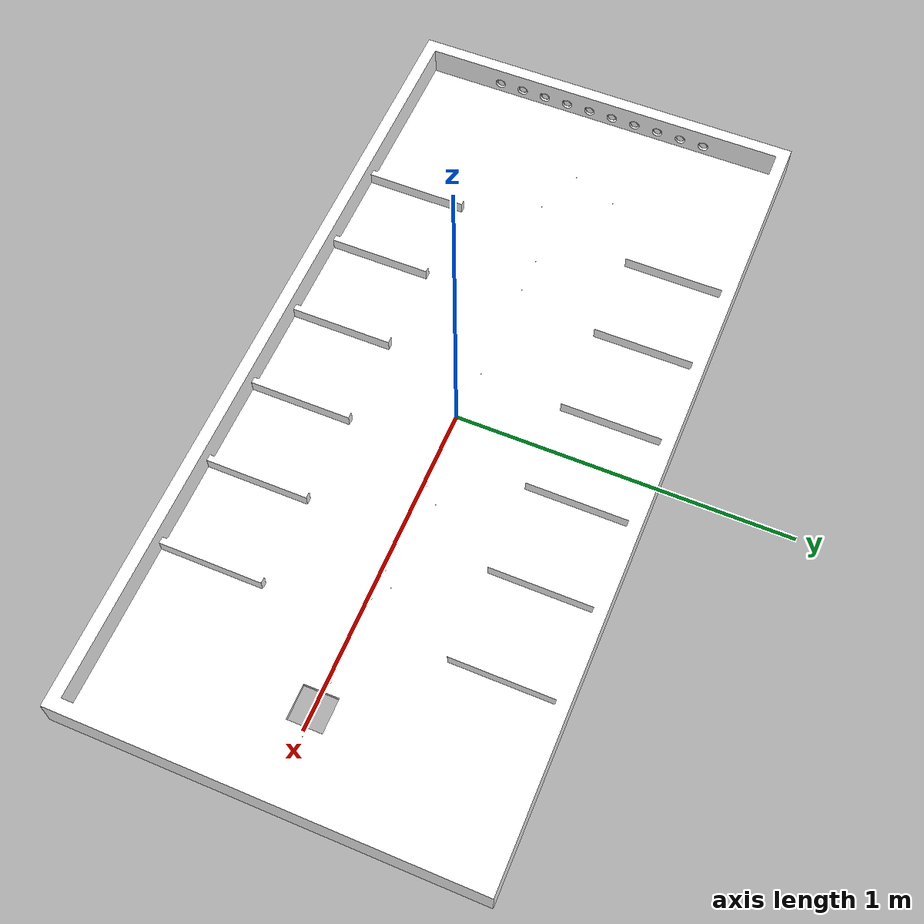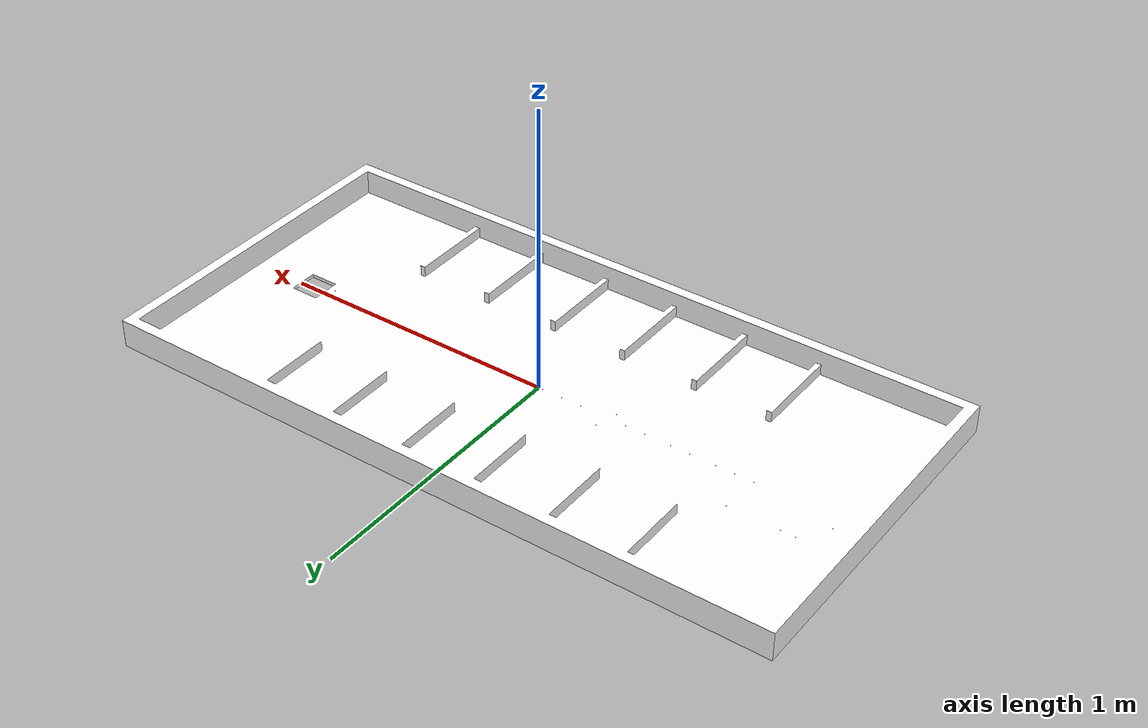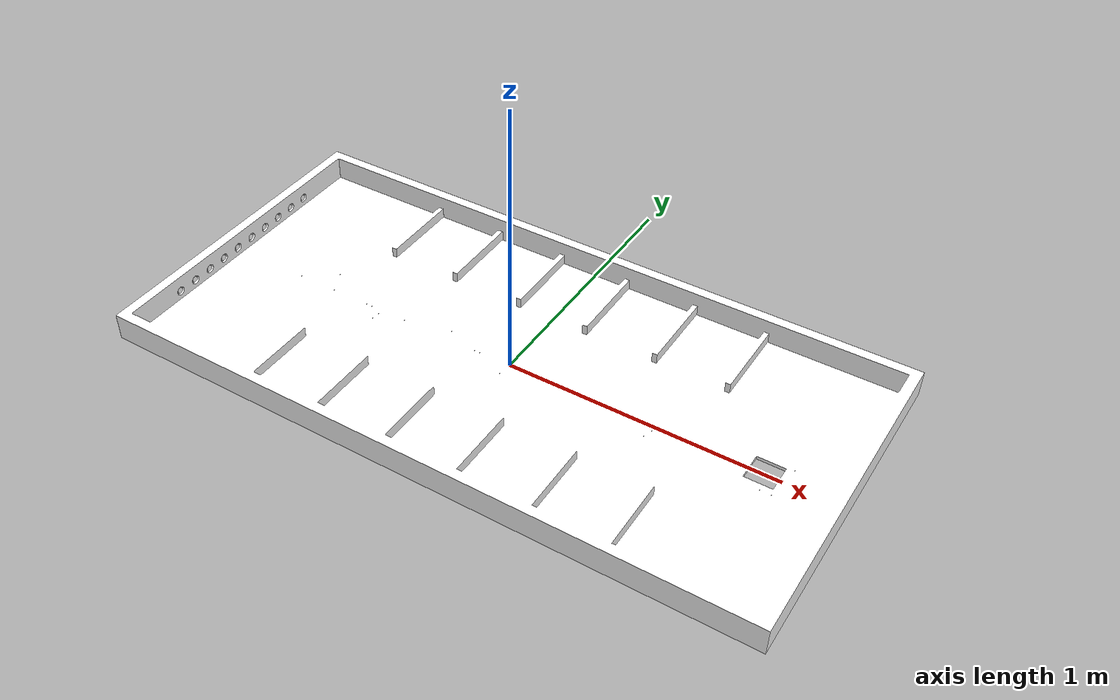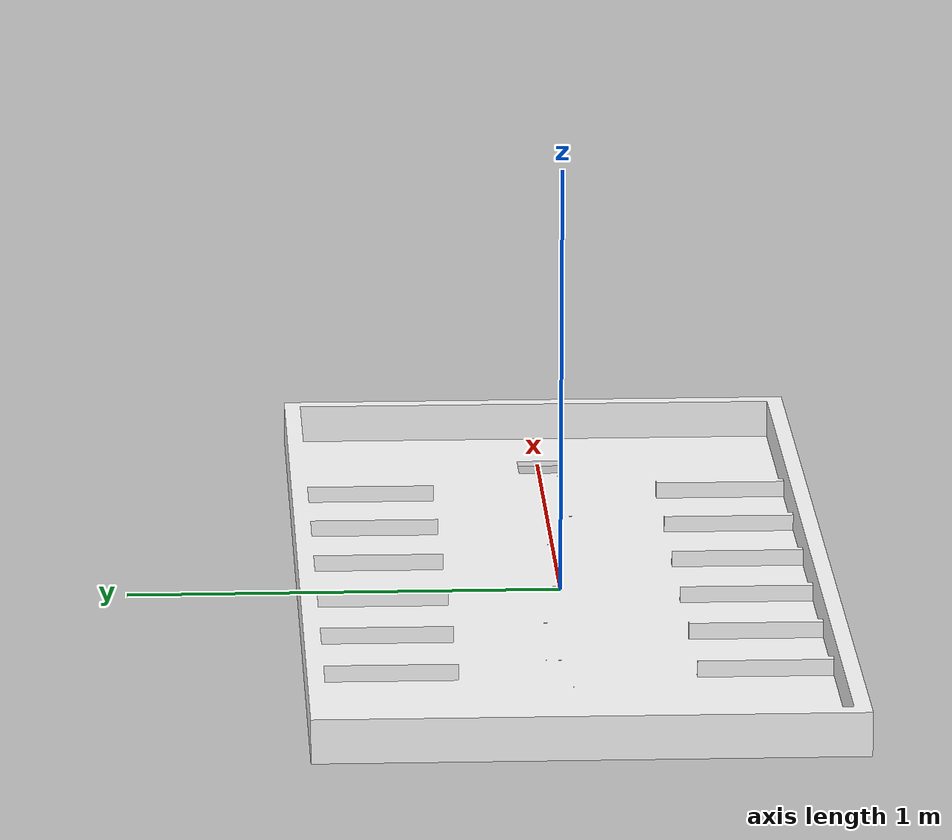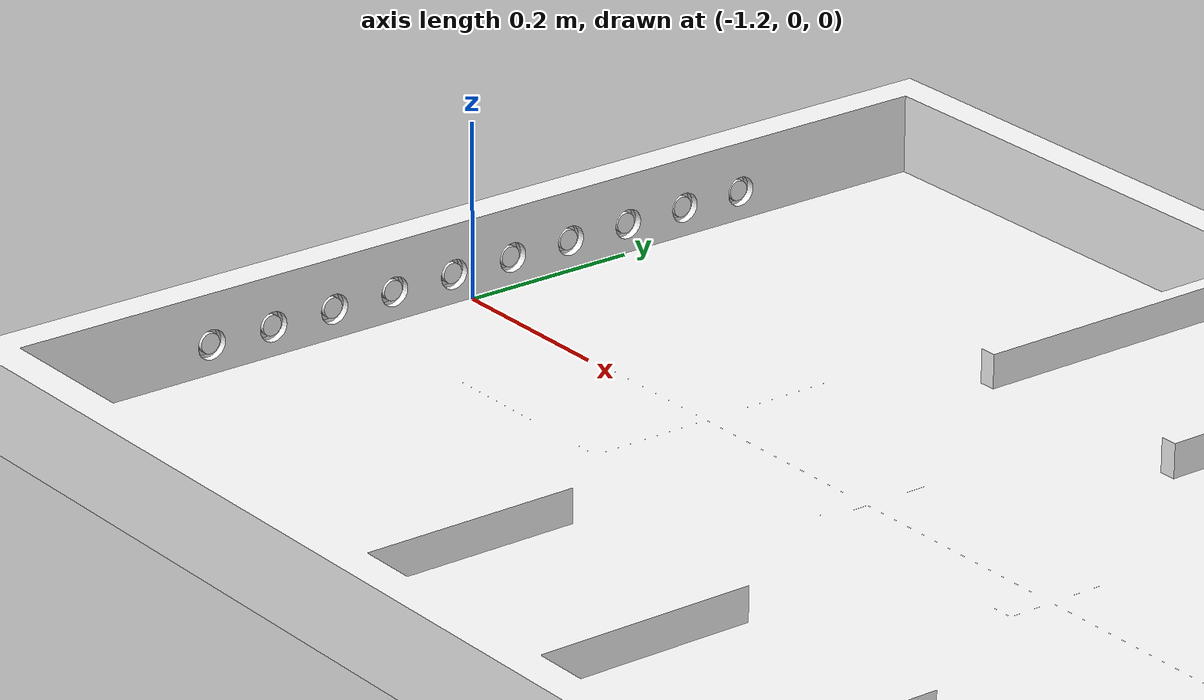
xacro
<?xml version="1.0" ?>
<robot xmlns:xacro="http://www.ros.org/wiki/xacro" name="field.urdf">
    <link name="field_link">
        <!-- We don't need inertial since it is loaded with a fixed base -->

        <!-- Import the visual from a textured .obj -->
        <visual>
            <!-- Center on the origin -->
            <origin rpy="0 0 0" xyz="0 0 0"/>

            <geometry>
                <mesh filename="field.obj" scale="1 1 1"/>
            </geometry>

            <!-- For some reason textures don't load without this -->
            <material name="white">
                <color rgba="1 1 1 1"/>
            </material>
        </visual>

        <!-- Macro for generic collision boxes -->
        <!-- Length, width, and hight go to X, Y, and Z -->
        <xacro:macro name="collision_box" params="x y z l w h">
            <collision>
                <origin rpy="0 0 0" xyz="${x} ${y} ${z}"/>
                <geometry>
                    <box size="${l} ${w} ${h}"/>
                </geometry>
            </collision>
        </xacro:macro>

        <!-- Under the base -->
        <xacro:collision_box x="0"      y="0"      z="-.05"
                             l="2.4384" w="1.2192" h=".1"/>

        <!-- Back half of the base -->
        <xacro:collision_box x="-0.1651" y="0"      z="0.005953"
                             l="2.1082"  w="1.2192" h="0.01191"/>

        <!-- Sides of the base -->
        <xacro:collision_box x="0.9398" y="0.3302" z="0.005953"
                             l="0.1016" w="0.5588" h="0.01191"/>
        <xacro:collision_box x="0.9398" y="-0.3302" z="0.005953"
                             l="0.1016" w="0.5588"  h="0.01191"/>

        <!-- Front of the base -->
        <xacro:collision_box x="1.1049" y="0"      z="0.005953"
                             l="0.2286" w="1.2192" h="0.01191"/>

        <!-- Front wall -->
        <xacro:collision_box x="1.20015" y="0"      z="0.05636"
                             l="0.0381"  w="1.2192" h="0.0889"/>

        <!-- Side walls -->
        <xacro:collision_box x="0"      y="0.59055" z="0.05636"
                             l="2.4384" w="0.0381"  h="0.0889"/>
        <xacro:collision_box x="0"      y="-0.59055" z="0.05636"
                             l="2.4384" w="0.0381"   h="0.0889"/>

        <!-- Back wall -->
        <xacro:collision_box x="-1.20784375" y="0"      z="0.05636"
                             l="0.0227125"   w="1.2192" h="0.0889"/>
        <!-- Top and bottom liners -->
        <xacro:collision_box x="-1.18879375" y="0"      z="0.080955"
                             l="0.0153875"   w="1.2192" h="0.03971"/>
        <xacro:collision_box x="-1.18879375" y="0"      z="0.019855"
                             l="0.0153875"   w="1.2192" h="0.01589"/>
        <!-- Side liners -->
        <xacro:collision_box x="-1.18879375" y="0.484275" z="0.04445"
                             l="0.0153875"   w="0.25065"  h="0.0333"/>
        <xacro:collision_box x="-1.18879375" y="-0.484275" z="0.04445"
                             l="0.0153875"   w="0.25065"   h="0.0333"/>
        <!-- Macro for the middle liners -->
        <!-- Numbered 0-8 based on the button on its right -->
        <xacro:macro name="mid_liner" params="num">
            <!-- Compute the y values to draw between -->
            <xacro:property name="by1"
                value="${-0.3423 + num*0.0762 - (.0012 if num >= 5 else 0)}"/>
            <xacro:property name="by2"
                value="${-0.3423 + (num+1)*0.0762 - (.0012 if num >= 4 else 0)}"/>

            <xacro:collision_box x="-1.8879375" y="${(by1+by2)/2}"  z=".04445"
                                 l=".0153875"   w="${by2-by1}" h=".0333"/>
        </xacro:macro>
        <xacro:mid_liner num="0"/>
        <xacro:mid_liner num="1"/>
        <xacro:mid_liner num="2"/>
        <xacro:mid_liner num="3"/>
        <xacro:mid_liner num="4"/>
        <xacro:mid_liner num="5"/>
        <xacro:mid_liner num="6"/>
        <xacro:mid_liner num="7"/>
        <xacro:mid_liner num="8"/>

        <!-- Macro for the bins -->
        <!-- Numbering goes 0-5 front to back -->
        <!-- Side is 1 if left and -1 if right -->
        <xacro:macro name="bin" params="side num">
            <xacro:collision_box x="${0.682625 - num*0.27305}"
                                 y="${side*0.4191}"
                                 z=".03096" l="0.01905" w="0.3048" h=".0381"/>
        </xacro:macro>
        <!-- Macro for an entire side -->
        <xacro:macro name="bin_side" params="side">
            <xacro:bin side="${side}" num="0"/>
            <xacro:bin side="${side}" num="1"/>
            <xacro:bin side="${side}" num="2"/>
            <xacro:bin side="${side}" num="3"/>
            <xacro:bin side="${side}" num="4"/>
            <xacro:bin side="${side}" num="5"/>
        </xacro:macro>

        <xacro:bin_side side="1"/>
        <xacro:bin_side side="-1"/>
    </link>

    <!-- Macro for the buttons -->
    <!-- Numbered 0-9 -->
    <xacro:macro name="button" params="num">
        <!-- The y value of the button -->
        <!-- Quite a long computation, so stored -->
        <xacro:property name="by"
            value="${-0.3423 + num*0.0762 - (.0012 if num >= 5 else 0)}"/>

        <link name="push_link_${num}">
            <visual>
                <origin rpy="0 1.5708 0" xyz="-1.189125 ${by} 0.04445"/>
                <geometry>
                    <cylinder radius= "0.011325" length ="0.0097" />
                </geometry>
                <material name="push_material_${num}">
                    <color rgba="1 1 1 1"/>
                </material>
            </visual>
            <collision>
                <origin rpy="0 1.5708 0" xyz="-1.189125 ${by} 0.04445"/>
                <geometry>
                    <cylinder radius= "0.011325" length ="0.0097" />
                </geometry>
            </collision>
            <inertial>
                <mass value=".005"/>
                <inertia ixx="1e-4" ixy="1e-4" ixz="1e-4" iyy="1e-4" iyz="1e-4" izz="1e-4"/>
            </inertial>
        </link>

        <link name="ring_link_${num}">
            <visual>
                <origin rpy="0 1.5708 0" xyz="-1.19155 ${by} 0.04445"/>
                <geometry>
                    <cylinder radius= "0.01665" length ="0.0047" />
                </geometry>
                <material name="ring_material">
                    <color rgba="0.9 0.9 0.9 0.8"/>
                </material>
            </visual>
            <collision>
                <origin rpy="0 1.5708 0" xyz="-1.19155 ${by} 0.04445"/>
                <geometry>
                    <cylinder radius= "0.01665" length ="0.0047" />
                </geometry>
            </collision>
            <inertial>
                <mass value=".005"/>
                <inertia ixx="1e-4" ixy="1e-4" ixz="1e-4" iyy="1e-4" iyz="1e-4" izz="1e-4"/>
            </inertial>
        </link>

        <joint name="ring_push_joint_${num}" type="prismatic">
            <parent link="ring_link_${num}"/>
            <child link="push_link_${num}"/>
            <axis xyz="1 0 0"/>
            <limit lower="-0.0041" upper="0" effort="0.2" velocity="0.5" />
        </joint>

        <joint name="field_ring_joint_${num}" type="fixed">
            <parent link="field_link"/>
            <child link="ring_link_${num}"/>
        </joint>
    </xacro:macro>

    <!-- All ten buttons -->
    <xacro:button num="0"/>
    <xacro:button num="1"/>
    <xacro:button num="2"/>
    <xacro:button num="3"/>
    <xacro:button num="4"/>
    <xacro:button num="5"/>
    <xacro:button num="6"/>
    <xacro:button num="7"/>
    <xacro:button num="8"/>
    <xacro:button num="9"/>
</robot>
